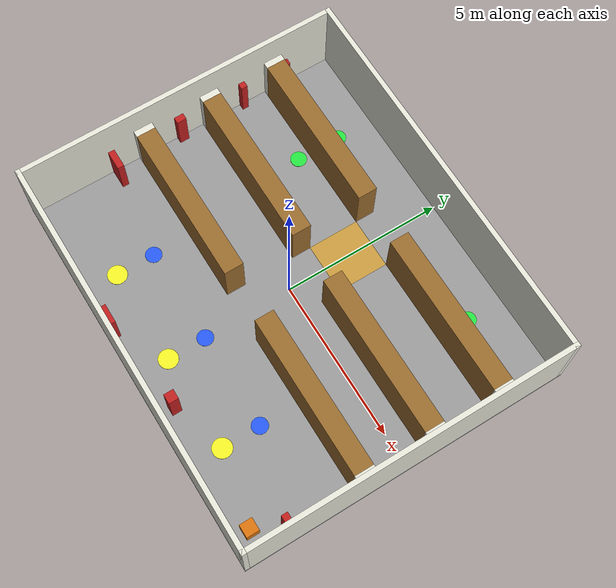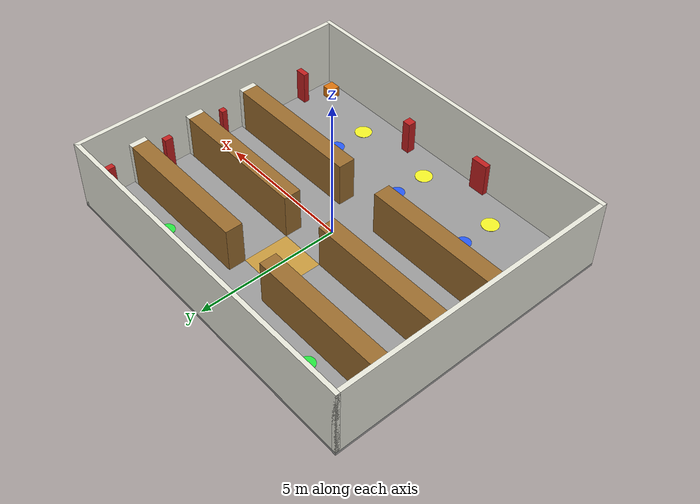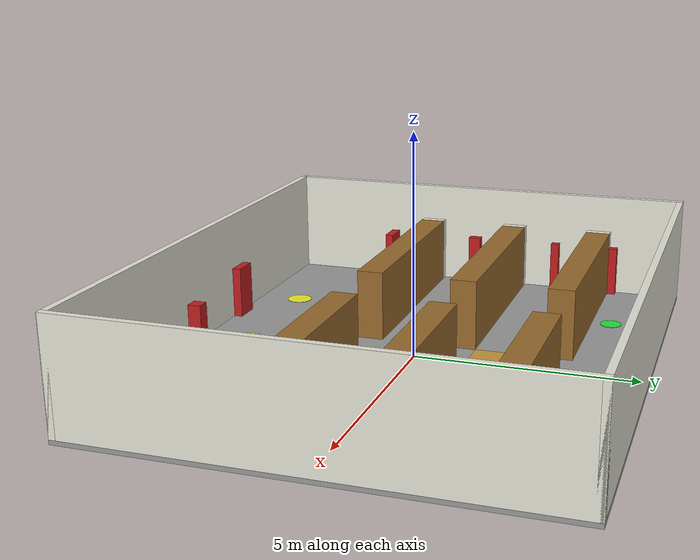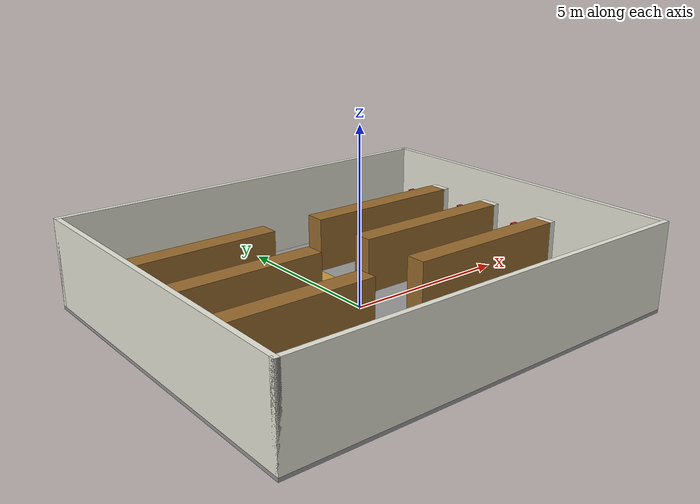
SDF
<?xml version="1.0" ?>
<sdf version="1.9">
  <world name="warehouse">

    <physics name="1ms" type="ode">
      <max_step_size>0.005</max_step_size>
      <real_time_factor>1.0</real_time_factor>
      <real_time_update_rate>200</real_time_update_rate>
    </physics>

    <plugin filename="gz-sim-physics-system" name="gz::sim::systems::Physics"/>
    <plugin filename="gz-sim-sensors-system" name="gz::sim::systems::Sensors">
      <render_engine>ogre2</render_engine>
    </plugin>
    <plugin filename="gz-sim-scene-broadcaster-system" name="gz::sim::systems::SceneBroadcaster"/>
    <plugin filename="gz-sim-user-commands-system" name="gz::sim::systems::UserCommands"/>
    <plugin filename="gz-sim-contact-system" name="gz::sim::systems::Contact"/>

    <scene>
      <ambient>0.6 0.6 0.6 1</ambient>
      <background>0.7 0.7 0.7 1</background>
      <shadows>true</shadows>
      <grid>false</grid>
    </scene>

    <light type="directional" name="sun">
      <cast_shadows>true</cast_shadows>
      <pose>0 0 10 0 0 0</pose>
      <diffuse>0.9 0.9 0.9 1</diffuse>
      <specular>0.2 0.2 0.2 1</specular>
      <direction>-0.4 0.2 -0.9</direction>
    </light>

    <light type="point" name="warehouse_light_north">
      <pose>0 3 3.2 0 0 0</pose>
      <diffuse>0.9 0.9 0.85 1</diffuse>
      <specular>0.1 0.1 0.1 1</specular>
      <attenuation>
        <range>12</range>
        <constant>0.3</constant>
        <linear>0.05</linear>
        <quadratic>0.0</quadratic>
      </attenuation>
      <cast_shadows>false</cast_shadows>
    </light>

    <light type="point" name="warehouse_light_south">
      <pose>0 -3 3.2 0 0 0</pose>
      <diffuse>0.9 0.9 0.85 1</diffuse>
      <specular>0.1 0.1 0.1 1</specular>
      <attenuation>
        <range>12</range>
        <constant>0.3</constant>
        <linear>0.05</linear>
        <quadratic>0.0</quadratic>
      </attenuation>
      <cast_shadows>false</cast_shadows>
    </light>

    <model name="warehouse_structure">
      <static>true</static>

      <link name="floor">
        <pose>0 0 -0.05 0 0 0</pose>
        <collision name="collision">
          <geometry>
            <box><size>12.3 10.3 0.1</size></box>
          </geometry>
        </collision>
        <visual name="visual">
          <geometry>
            <box><size>12.3 10.3 0.1</size></box>
          </geometry>
          <material>
            <ambient>0.55 0.55 0.55 1</ambient>
            <diffuse>0.6 0.6 0.6 1</diffuse>
          </material>
        </visual>
      </link>

      <link name="wall_north">
        <pose>0 5.075 1.25 0 0 0</pose>
        <collision name="collision">
          <geometry><box><size>12.3 0.15 2.5</size></box></geometry>
        </collision>
        <visual name="visual">
          <geometry><box><size>12.3 0.15 2.5</size></box></geometry>
          <material>
            <ambient>0.85 0.85 0.8 1</ambient>
            <diffuse>0.9 0.9 0.85 1</diffuse>
          </material>
        </visual>
      </link>

      <link name="wall_south">
        <pose>0 -5.075 1.25 0 0 0</pose>
        <collision name="collision">
          <geometry><box><size>12.3 0.15 2.5</size></box></geometry>
        </collision>
        <visual name="visual">
          <geometry><box><size>12.3 0.15 2.5</size></box></geometry>
          <material>
            <ambient>0.85 0.85 0.8 1</ambient>
            <diffuse>0.9 0.9 0.85 1</diffuse>
          </material>
        </visual>
      </link>

      <link name="wall_east">
        <pose>6.075 0 1.25 0 0 0</pose>
        <collision name="collision">
          <geometry><box><size>0.15 10.3 2.5</size></box></geometry>
        </collision>
        <visual name="visual">
          <geometry><box><size>0.15 10.3 2.5</size></box></geometry>
          <material>
            <ambient>0.85 0.85 0.8 1</ambient>
            <diffuse>0.9 0.9 0.85 1</diffuse>
          </material>
        </visual>
      </link>

      <link name="wall_west">
        <pose>-6.075 0 1.25 0 0 0</pose>
        <collision name="collision">
          <geometry><box><size>0.15 10.3 2.5</size></box></geometry>
        </collision>
        <visual name="visual">
          <geometry><box><size>0.15 10.3 2.5</size></box></geometry>
          <material>
            <ambient>0.85 0.85 0.8 1</ambient>
            <diffuse>0.9 0.9 0.85 1</diffuse>
          </material>
        </visual>
      </link>

      <!-- Row 1 (north rack), Y center 3.1, depth 0.6, height 1.6, length 5.0 -->
      <link name="rack_row1_west">
        <pose>-3.3 3.1 0.8 0 0 0</pose>
        <collision name="collision">
          <geometry><box><size>5.0 0.6 1.6</size></box></geometry>
        </collision>
        <visual name="visual">
          <geometry><box><size>5.0 0.6 1.6</size></box></geometry>
          <material>
            <ambient>0.5 0.35 0.15 1</ambient>
            <diffuse>0.6 0.42 0.18 1</diffuse>
          </material>
        </visual>
      </link>
      <link name="rack_row1_east">
        <pose>3.3 3.1 0.8 0 0 0</pose>
        <collision name="collision">
          <geometry><box><size>5.0 0.6 1.6</size></box></geometry>
        </collision>
        <visual name="visual">
          <geometry><box><size>5.0 0.6 1.6</size></box></geometry>
          <material>
            <ambient>0.5 0.35 0.15 1</ambient>
            <diffuse>0.6 0.42 0.18 1</diffuse>
          </material>
        </visual>
      </link>

      <!-- Row 2 (middle rack), Y center 0.9 -->
      <link name="rack_row2_west">
        <pose>-3.3 0.9 0.8 0 0 0</pose>
        <collision name="collision">
          <geometry><box><size>5.0 0.6 1.6</size></box></geometry>
        </collision>
        <visual name="visual">
          <geometry><box><size>5.0 0.6 1.6</size></box></geometry>
          <material>
            <ambient>0.5 0.35 0.15 1</ambient>
            <diffuse>0.6 0.42 0.18 1</diffuse>
          </material>
        </visual>
      </link>
      <link name="rack_row2_east">
        <pose>3.3 0.9 0.8 0 0 0</pose>
        <collision name="collision">
          <geometry><box><size>5.0 0.6 1.6</size></box></geometry>
        </collision>
        <visual name="visual">
          <geometry><box><size>5.0 0.6 1.6</size></box></geometry>
          <material>
            <ambient>0.5 0.35 0.15 1</ambient>
            <diffuse>0.6 0.42 0.18 1</diffuse>
          </material>
        </visual>
      </link>

      <!-- Row 3 (south rack), Y center -1.3 -->
      <link name="rack_row3_west">
        <pose>-3.3 -1.3 0.8 0 0 0</pose>
        <collision name="collision">
          <geometry><box><size>5.0 0.6 1.6</size></box></geometry>
        </collision>
        <visual name="visual">
          <geometry><box><size>5.0 0.6 1.6</size></box></geometry>
          <material>
            <ambient>0.5 0.35 0.15 1</ambient>
            <diffuse>0.6 0.42 0.18 1</diffuse>
          </material>
        </visual>
      </link>
      <link name="rack_row3_east">
        <pose>3.3 -1.3 0.8 0 0 0</pose>
        <collision name="collision">
          <geometry><box><size>5.0 0.6 1.6</size></box></geometry>
        </collision>
        <visual name="visual">
          <geometry><box><size>5.0 0.6 1.6</size></box></geometry>
          <material>
            <ambient>0.5 0.35 0.15 1</ambient>
            <diffuse>0.6 0.42 0.18 1</diffuse>
          </material>
        </visual>
      </link>

      <!-- Rack-end caps (R7): close the 0.2 m rack-to-side-wall gaps
           (x in [-6,-5.8] / [5.8,6]) so no planner routes through them. -->
      <link name="wall_endcap_row1_west">
        <pose>-5.9 3.1 0.8 0 0 0</pose>
        <collision name="collision">
          <geometry><box><size>0.2 0.6 1.6</size></box></geometry>
        </collision>
        <visual name="visual">
          <geometry><box><size>0.2 0.6 1.6</size></box></geometry>
          <material>
            <ambient>0.85 0.85 0.8 1</ambient>
            <diffuse>0.9 0.9 0.85 1</diffuse>
          </material>
        </visual>
      </link>
      <link name="wall_endcap_row1_east">
        <pose>5.9 3.1 0.8 0 0 0</pose>
        <collision name="collision">
          <geometry><box><size>0.2 0.6 1.6</size></box></geometry>
        </collision>
        <visual name="visual">
          <geometry><box><size>0.2 0.6 1.6</size></box></geometry>
          <material>
            <ambient>0.85 0.85 0.8 1</ambient>
            <diffuse>0.9 0.9 0.85 1</diffuse>
          </material>
        </visual>
      </link>
      <link name="wall_endcap_row2_west">
        <pose>-5.9 0.9 0.8 0 0 0</pose>
        <collision name="collision">
          <geometry><box><size>0.2 0.6 1.6</size></box></geometry>
        </collision>
        <visual name="visual">
          <geometry><box><size>0.2 0.6 1.6</size></box></geometry>
          <material>
            <ambient>0.85 0.85 0.8 1</ambient>
            <diffuse>0.9 0.9 0.85 1</diffuse>
          </material>
        </visual>
      </link>
      <link name="wall_endcap_row2_east">
        <pose>5.9 0.9 0.8 0 0 0</pose>
        <collision name="collision">
          <geometry><box><size>0.2 0.6 1.6</size></box></geometry>
        </collision>
        <visual name="visual">
          <geometry><box><size>0.2 0.6 1.6</size></box></geometry>
          <material>
            <ambient>0.85 0.85 0.8 1</ambient>
            <diffuse>0.9 0.9 0.85 1</diffuse>
          </material>
        </visual>
      </link>
      <link name="wall_endcap_row3_west">
        <pose>-5.9 -1.3 0.8 0 0 0</pose>
        <collision name="collision">
          <geometry><box><size>0.2 0.6 1.6</size></box></geometry>
        </collision>
        <visual name="visual">
          <geometry><box><size>0.2 0.6 1.6</size></box></geometry>
          <material>
            <ambient>0.85 0.85 0.8 1</ambient>
            <diffuse>0.9 0.9 0.85 1</diffuse>
          </material>
        </visual>
      </link>
      <link name="wall_endcap_row3_east">
        <pose>5.9 -1.3 0.8 0 0 0</pose>
        <collision name="collision">
          <geometry><box><size>0.2 0.6 1.6</size></box></geometry>
        </collision>
        <visual name="visual">
          <geometry><box><size>0.2 0.6 1.6</size></box></geometry>
          <material>
            <ambient>0.85 0.85 0.8 1</ambient>
            <diffuse>0.9 0.9 0.85 1</diffuse>
          </material>
        </visual>
      </link>

      <link name="landmark_pillar_se">
        <pose>1.35 -4.55 0.6 0 0 0</pose>
        <collision name="collision">
          <geometry><box><size>0.3 0.3 1.2</size></box></geometry>
        </collision>
        <visual name="visual">
          <geometry><box><size>0.3 0.3 1.2</size></box></geometry>
          <material>
            <ambient>0.6 0.1 0.1 1</ambient>
            <diffuse>0.75 0.12 0.12 1</diffuse>
          </material>
        </visual>
      </link>
      <link name="landmark_fin_w">
        <pose>-5.7 -2.4 0.6 0 0 0</pose>
        <collision name="collision">
          <geometry><box><size>0.6 0.2 1.2</size></box></geometry>
        </collision>
        <visual name="visual">
          <geometry><box><size>0.6 0.2 1.2</size></box></geometry>
          <material>
            <ambient>0.6 0.1 0.1 1</ambient>
            <diffuse>0.75 0.12 0.12 1</diffuse>
          </material>
        </visual>
      </link>
      <link name="landmark_fin_e">
        <pose>5.8 -3.6 0.6 0 0 0</pose>
        <collision name="collision">
          <geometry><box><size>0.4 0.2 1.2</size></box></geometry>
        </collision>
        <visual name="visual">
          <geometry><box><size>0.4 0.2 1.2</size></box></geometry>
          <material>
            <ambient>0.6 0.1 0.1 1</ambient>
            <diffuse>0.75 0.12 0.12 1</diffuse>
          </material>
        </visual>
      </link>

      <link name="landmark_end_a_e">
        <pose>5.9 2.05 0.6 0 0 0</pose>
        <collision name="collision">
          <geometry><box><size>0.2 0.3 1.2</size></box></geometry>
        </collision>
        <visual name="visual">
          <geometry><box><size>0.2 0.3 1.2</size></box></geometry>
          <material>
            <ambient>0.6 0.1 0.1 1</ambient>
            <diffuse>0.75 0.12 0.12 1</diffuse>
          </material>
        </visual>
      </link>
      <link name="landmark_end_b_w">
        <pose>-5.9 -0.15 0.6 0 0 0</pose>
        <collision name="collision">
          <geometry><box><size>0.2 0.3 1.2</size></box></geometry>
        </collision>
        <visual name="visual">
          <geometry><box><size>0.2 0.3 1.2</size></box></geometry>
          <material>
            <ambient>0.6 0.1 0.1 1</ambient>
            <diffuse>0.75 0.12 0.12 1</diffuse>
          </material>
        </visual>
      </link>
      <link name="landmark_end_b_e">
        <pose>5.9 -0.2 0.6 0 0 0</pose>
        <collision name="collision">
          <geometry><box><size>0.2 0.2 1.2</size></box></geometry>
        </collision>
        <visual name="visual">
          <geometry><box><size>0.2 0.2 1.2</size></box></geometry>
          <material>
            <ambient>0.6 0.1 0.1 1</ambient>
            <diffuse>0.75 0.12 0.12 1</diffuse>
          </material>
        </visual>
      </link>
      <link name="landmark_fin_s">
        <pose>-1.6 -4.9 0.6 0 0 0</pose>
        <collision name="collision">
          <geometry><box><size>0.6 0.2 1.2</size></box></geometry>
        </collision>
        <visual name="visual">
          <geometry><box><size>0.6 0.2 1.2</size></box></geometry>
          <material>
            <ambient>0.6 0.1 0.1 1</ambient>
            <diffuse>0.75 0.12 0.12 1</diffuse>
          </material>
        </visual>
      </link>

      <!-- Round-3 landmarks: dead-end fins for the north aisle and
           aisle A west, enabled by the R12 SP_* zone-rect trim. Same
           poses/sizes as warehouse.wbt / warehouse_grid.yaml. -->
      <link name="landmark_end_n_w">
        <pose>-5.9 3.5 0.6 0 0 0</pose>
        <collision name="collision">
          <geometry><box><size>0.2 0.2 1.2</size></box></geometry>
        </collision>
        <visual name="visual">
          <geometry><box><size>0.2 0.2 1.2</size></box></geometry>
          <material>
            <ambient>0.6 0.1 0.1 1</ambient>
            <diffuse>0.75 0.12 0.12 1</diffuse>
          </material>
        </visual>
      </link>
      <link name="landmark_end_n_e">
        <pose>5.9 4.3 0.6 0 0 0</pose>
        <collision name="collision">
          <geometry><box><size>0.2 0.4 1.2</size></box></geometry>
        </collision>
        <visual name="visual">
          <geometry><box><size>0.2 0.4 1.2</size></box></geometry>
          <material>
            <ambient>0.6 0.1 0.1 1</ambient>
            <diffuse>0.75 0.12 0.12 1</diffuse>
          </material>
        </visual>
      </link>
      <link name="landmark_end_a_w">
        <pose>-5.9 2.0 0.6 0 0 0</pose>
        <collision name="collision">
          <geometry><box><size>0.2 0.2 1.2</size></box></geometry>
        </collision>
        <visual name="visual">
          <geometry><box><size>0.2 0.2 1.2</size></box></geometry>
          <material>
            <ambient>0.6 0.1 0.1 1</ambient>
            <diffuse>0.75 0.12 0.12 1</diffuse>
          </material>
        </visual>
      </link>

    </model>

    <model name="intersection_marker">
      <static>true</static>
      <link name="marker">
        <pose>0 2.0 0.006 0 0 0</pose>
        <visual name="visual">
          <geometry><box><size>1.6 1.6 0.01</size></box></geometry>
          <material>
            <ambient>0.9 0.6 0.05 0.6</ambient>
            <diffuse>0.95 0.65 0.05 0.6</diffuse>
          </material>
          <transparency>0.4</transparency>
        </visual>
      </link>
    </model>

    <model name="spawn_marker_1">
      <static>true</static>
      <link name="marker">
        <pose>-3.0 -4.0 0.006 0 0 0</pose>
        <visual name="visual">
          <geometry><cylinder><radius>0.3</radius><length>0.01</length></cylinder></geometry>
          <material>
            <ambient>0.9 0.9 0.1 1</ambient>
            <diffuse>0.95 0.95 0.15 1</diffuse>
          </material>
        </visual>
      </link>
    </model>
    <model name="spawn_marker_2">
      <static>true</static>
      <link name="marker">
        <pose>0.0 -4.0 0.006 0 0 0</pose>
        <visual name="visual">
          <geometry><cylinder><radius>0.3</radius><length>0.01</length></cylinder></geometry>
          <material>
            <ambient>0.9 0.9 0.1 1</ambient>
            <diffuse>0.95 0.95 0.15 1</diffuse>
          </material>
        </visual>
      </link>
    </model>
    <model name="spawn_marker_3">
      <static>true</static>
      <link name="marker">
        <pose>3.0 -4.0 0.006 0 0 0</pose>
        <visual name="visual">
          <geometry><cylinder><radius>0.3</radius><length>0.01</length></cylinder></geometry>
          <material>
            <ambient>0.9 0.9 0.1 1</ambient>
            <diffuse>0.95 0.95 0.15 1</diffuse>
          </material>
        </visual>
      </link>
    </model>

    <model name="pickup_1">
      <static>true</static>
      <link name="marker">
        <pose>-3.45 3.85 0.006 0 0 0</pose>
        <visual name="visual">
          <geometry><cylinder><radius>0.25</radius><length>0.01</length></cylinder></geometry>
          <material>
            <ambient>0.1 0.8 0.2 1</ambient>
            <diffuse>0.15 0.9 0.25 1</diffuse>
          </material>
        </visual>
      </link>
    </model>
    <model name="pickup_2">
      <static>true</static>
      <link name="marker">
        <pose>3.45 3.85 0.006 0 0 0</pose>
        <visual name="visual">
          <geometry><cylinder><radius>0.25</radius><length>0.01</length></cylinder></geometry>
          <material>
            <ambient>0.1 0.8 0.2 1</ambient>
            <diffuse>0.15 0.9 0.25 1</diffuse>
          </material>
        </visual>
      </link>
    </model>
    <model name="pickup_3">
      <static>true</static>
      <link name="marker">
        <pose>-3.45 2.45 0.006 0 0 0</pose>
        <visual name="visual">
          <geometry><cylinder><radius>0.25</radius><length>0.01</length></cylinder></geometry>
          <material>
            <ambient>0.1 0.8 0.2 1</ambient>
            <diffuse>0.15 0.9 0.25 1</diffuse>
          </material>
        </visual>
      </link>
    </model>

    <model name="dropoff_1">
      <static>true</static>
      <link name="marker">
        <pose>-3.0 -2.8 0.006 0 0 0</pose>
        <visual name="visual">
          <geometry><cylinder><radius>0.25</radius><length>0.01</length></cylinder></geometry>
          <material>
            <ambient>0.1 0.3 0.9 1</ambient>
            <diffuse>0.15 0.35 0.95 1</diffuse>
          </material>
        </visual>
      </link>
    </model>
    <model name="dropoff_2">
      <static>true</static>
      <link name="marker">
        <pose>0.0 -2.8 0.006 0 0 0</pose>
        <visual name="visual">
          <geometry><cylinder><radius>0.25</radius><length>0.01</length></cylinder></geometry>
          <material>
            <ambient>0.1 0.3 0.9 1</ambient>
            <diffuse>0.15 0.35 0.95 1</diffuse>
          </material>
        </visual>
      </link>
    </model>
    <model name="dropoff_3">
      <static>true</static>
      <link name="marker">
        <pose>3.0 -2.8 0.006 0 0 0</pose>
        <visual name="visual">
          <geometry><cylinder><radius>0.25</radius><length>0.01</length></cylinder></geometry>
          <material>
            <ambient>0.1 0.3 0.9 1</ambient>
            <diffuse>0.15 0.35 0.95 1</diffuse>
          </material>
        </visual>
      </link>
    </model>

    <model name="movable_box">
      <pose>5.3 -4.5 0.2 0 0 0</pose>
      <link name="link">
        <inertial>
          <mass>5.0</mass>
          <inertia>
            <ixx>0.1333</ixx>
            <iyy>0.1333</iyy>
            <izz>0.1333</izz>
            <ixy>0</ixy>
            <ixz>0</ixz>
            <iyz>0</iyz>
          </inertia>
        </inertial>
        <collision name="collision">
          <geometry><box><size>0.4 0.4 0.4</size></box></geometry>
          <surface>
            <friction>
              <ode><mu>0.7</mu><mu2>0.7</mu2></ode>
            </friction>
          </surface>
        </collision>
        <visual name="visual">
          <geometry><box><size>0.4 0.4 0.4</size></box></geometry>
          <material>
            <ambient>0.8 0.4 0.05 1</ambient>
            <diffuse>0.85 0.45 0.05 1</diffuse>
          </material>
        </visual>
      </link>
    </model>

  </world>
</sdf>
